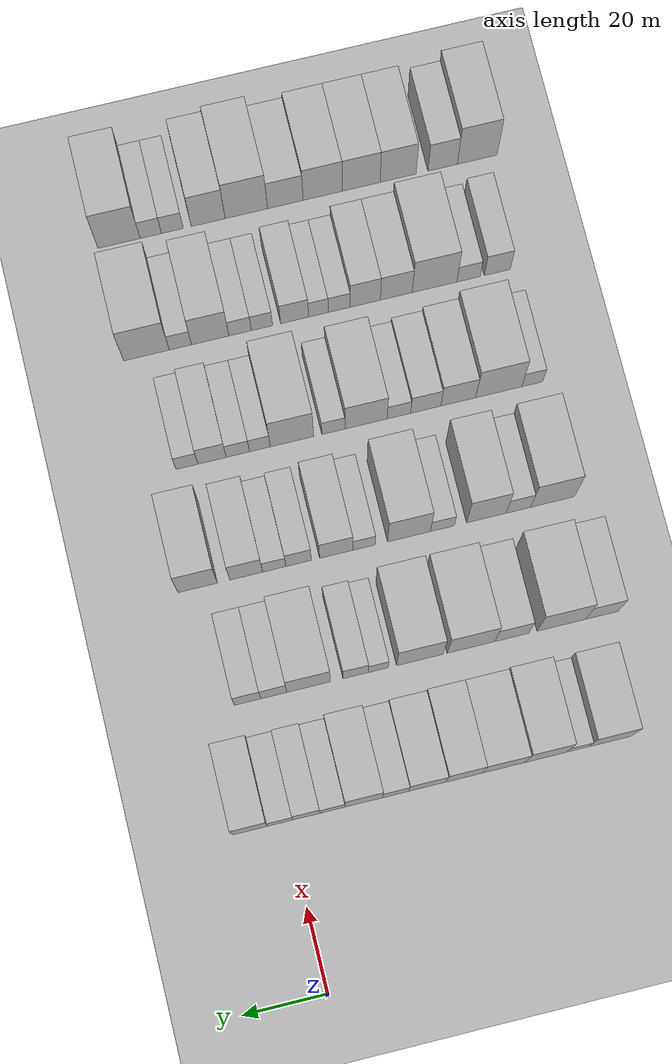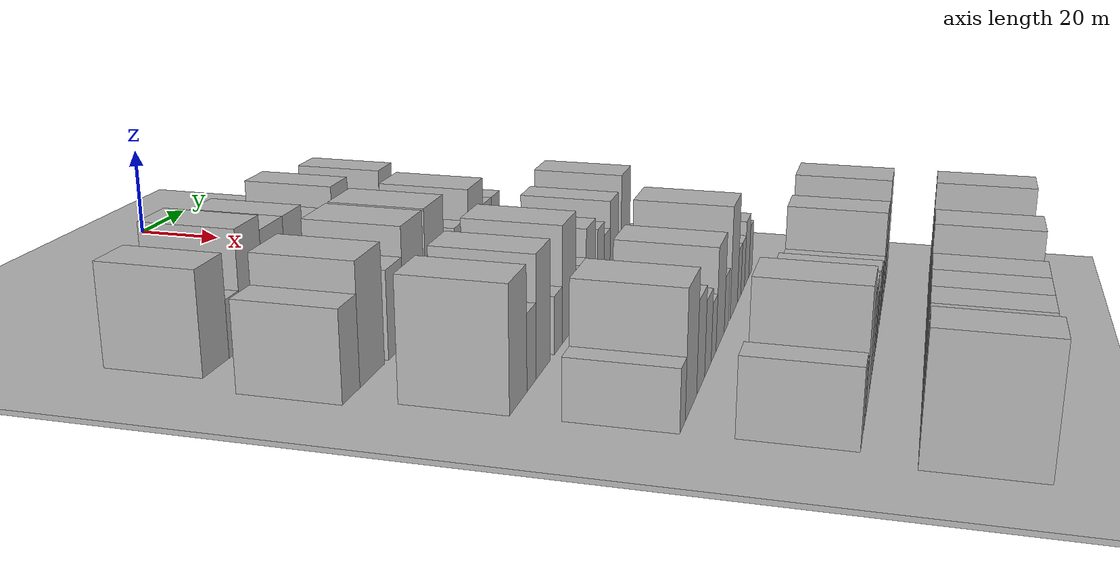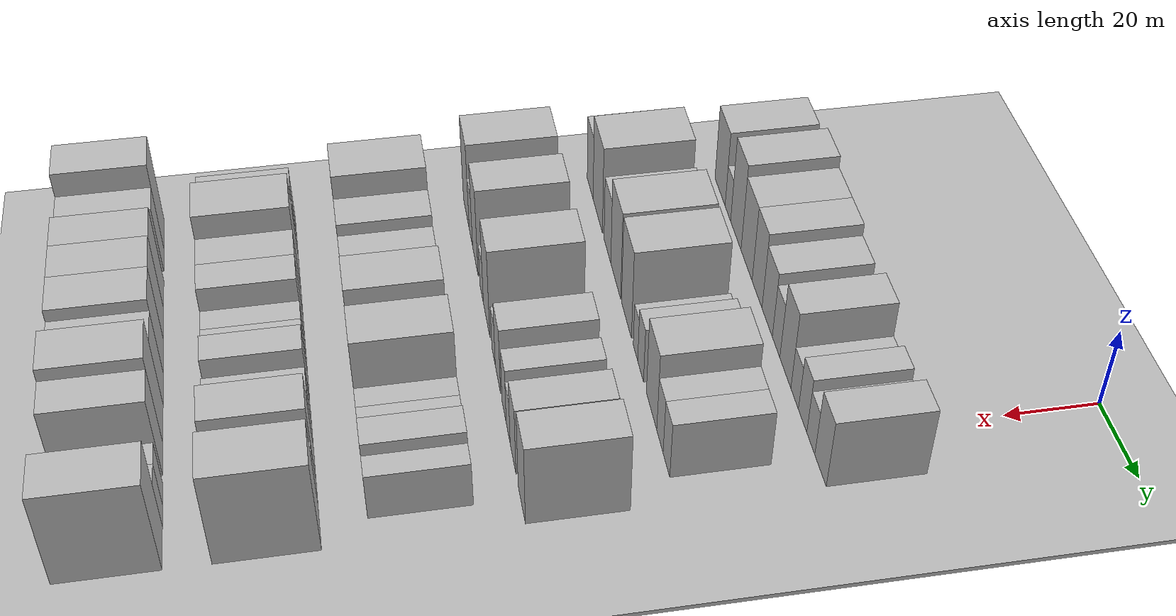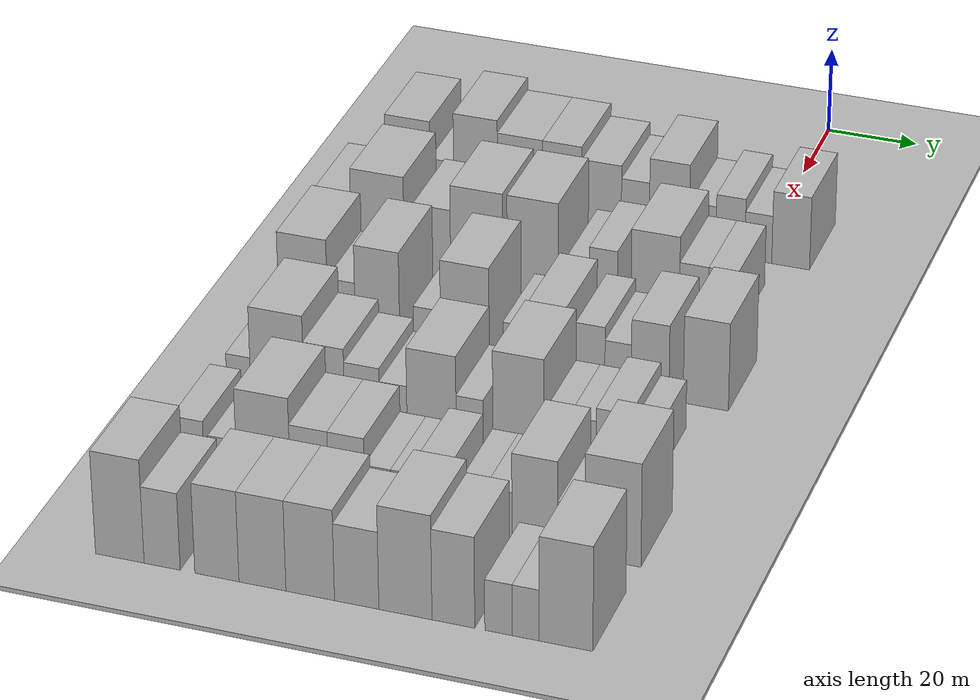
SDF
<sdf version="1.6">
 <world name="default">
  <include><name>ground_plane_1</name><uri>model://HANNAS_ground_plane</uri></include>
  <include>
   <name>ground_plane_2</name>
   <uri>model://HANNAS_ground_plane</uri>
   <pose>100 0 0  0 0 0</pose>
  </include>
  <model name="building_48">
   <static>1</static>
   <pose>50.0000 -77.1496 0 0.000000 0.000000 0.000000</pose>
   <link name="link">
    <pose>0 0 10.50 0 0 0</pose>
    <collision name="collision"><geometry><box><size>20.0000 10.1915 21.0000</size></box></geometry></collision>
    <visual name="visual">
     <cast_shadows>0</cast_shadows>
     <geometry><box><size>20.0000 10.1915 21.0000</size></box></geometry>
     <material>
      <script>
       <uri>model://HANNAS_wall/materials/scripts</uri>
       <uri>model://HANNAS_wall/materials/textures</uri>
       <name>vrc/HANNAS_wall</name>
      </script>
     </material>
    </visual>
   </link>
  </model>
  <model name="building_49">
   <static>1</static>
   <pose>50.0000 -69.3749 0 0.000000 0.000000 0.000000</pose>
   <link name="link">
    <pose>0 0 6.00 0 0 0</pose>
    <collision name="collision"><geometry><box><size>20.0000 5.3580 12.0000</size></box></geometry></collision>
    <visual name="visual">
     <cast_shadows>0</cast_shadows>
     <geometry><box><size>20.0000 5.3580 12.0000</size></box></geometry>
     <material>
      <script>
       <uri>model://HANNAS_wall/materials/scripts</uri>
       <uri>model://HANNAS_wall/materials/textures</uri>
       <name>vrc/HANNAS_wall</name>
      </script>
     </material>
    </visual>
   </link>
  </model>
  <model name="building_50">
   <static>1</static>
   <pose>50.0000 -61.7293 0 0.000000 0.000000 0.000000</pose>
   <link name="link">
    <pose>0 0 12.00 0 0 0</pose>
    <collision name="collision"><geometry><box><size>20.0000 9.9330 24.0000</size></box></geometry></collision>
    <visual name="visual">
     <cast_shadows>0</cast_shadows>
     <geometry><box><size>20.0000 9.9330 24.0000</size></box></geometry>
     <material>
      <script>
       <uri>model://HANNAS_wall/materials/scripts</uri>
       <uri>model://HANNAS_wall/materials/textures</uri>
       <name>vrc/HANNAS_wall</name>
      </script>
     </material>
    </visual>
   </link>
  </model>
  <model name="building_51">
   <static>1</static>
   <pose>50.0000 -51.6775 0 0.000000 0.000000 0.000000</pose>
   <link name="link">
    <pose>0 0 10.50 0 0 0</pose>
    <collision name="collision"><geometry><box><size>20.0000 10.1707 21.0000</size></box></geometry></collision>
    <visual name="visual">
     <cast_shadows>0</cast_shadows>
     <geometry><box><size>20.0000 10.1707 21.0000</size></box></geometry>
     <material>
      <script>
       <uri>model://HANNAS_wall/materials/scripts</uri>
       <uri>model://HANNAS_wall/materials/textures</uri>
       <name>vrc/HANNAS_wall</name>
      </script>
     </material>
    </visual>
   </link>
  </model>
  <model name="building_52">
   <static>1</static>
   <pose>50.0000 -42.2199 0 0.000000 0.000000 0.000000</pose>
   <link name="link">
    <pose>0 0 10.50 0 0 0</pose>
    <collision name="collision"><geometry><box><size>20.0000 8.7445 21.0000</size></box></geometry></collision>
    <visual name="visual">
     <cast_shadows>0</cast_shadows>
     <geometry><box><size>20.0000 8.7445 21.0000</size></box></geometry>
     <material>
      <script>
       <uri>model://HANNAS_wall/materials/scripts</uri>
       <uri>model://HANNAS_wall/materials/textures</uri>
       <name>vrc/HANNAS_wall</name>
      </script>
     </material>
    </visual>
   </link>
  </model>
  <model name="building_53">
   <static>1</static>
   <pose>50.0000 -33.4236 0 0.000000 0.000000 0.000000</pose>
   <link name="link">
    <pose>0 0 9.00 0 0 0</pose>
    <collision name="collision"><geometry><box><size>20.0000 8.8480 18.0000</size></box></geometry></collision>
    <visual name="visual">
     <cast_shadows>0</cast_shadows>
     <geometry><box><size>20.0000 8.8480 18.0000</size></box></geometry>
     <material>
      <script>
       <uri>model://HANNAS_wall/materials/scripts</uri>
       <uri>model://HANNAS_wall/materials/textures</uri>
       <name>vrc/HANNAS_wall</name>
      </script>
     </material>
    </visual>
   </link>
  </model>
  <model name="building_54">
   <static>1</static>
   <pose>50.0000 -25.8845 0 0.000000 0.000000 0.000000</pose>
   <link name="link">
    <pose>0 0 7.50 0 0 0</pose>
    <collision name="collision"><geometry><box><size>20.0000 6.2303 15.0000</size></box></geometry></collision>
    <visual name="visual">
     <cast_shadows>0</cast_shadows>
     <geometry><box><size>20.0000 6.2303 15.0000</size></box></geometry>
     <material>
      <script>
       <uri>model://HANNAS_wall/materials/scripts</uri>
       <uri>model://HANNAS_wall/materials/textures</uri>
       <name>vrc/HANNAS_wall</name>
      </script>
     </material>
    </visual>
   </link>
  </model>
  <model name="building_55">
   <static>1</static>
   <pose>50.0000 -18.3283 0 0.000000 0.000000 0.000000</pose>
   <link name="link">
    <pose>0 0 10.50 0 0 0</pose>
    <collision name="collision"><geometry><box><size>20.0000 8.8821 21.0000</size></box></geometry></collision>
    <visual name="visual">
     <cast_shadows>0</cast_shadows>
     <geometry><box><size>20.0000 8.8821 21.0000</size></box></geometry>
     <material>
      <script>
       <uri>model://HANNAS_wall/materials/scripts</uri>
       <uri>model://HANNAS_wall/materials/textures</uri>
       <name>vrc/HANNAS_wall</name>
      </script>
     </material>
    </visual>
   </link>
  </model>
  <model name="building_56">
   <static>1</static>
   <pose>50.0000 -10.9449 0 0.000000 0.000000 0.000000</pose>
   <link name="link">
    <pose>0 0 6.00 0 0 0</pose>
    <collision name="collision"><geometry><box><size>20.0000 5.8846 12.0000</size></box></geometry></collision>
    <visual name="visual">
     <cast_shadows>0</cast_shadows>
     <geometry><box><size>20.0000 5.8846 12.0000</size></box></geometry>
     <material>
      <script>
       <uri>model://HANNAS_wall/materials/scripts</uri>
       <uri>model://HANNAS_wall/materials/textures</uri>
       <name>vrc/HANNAS_wall</name>
      </script>
     </material>
    </visual>
   </link>
  </model>
  <model name="building_57">
   <static>1</static>
   <pose>50.0000 -4.8059 0 0.000000 0.000000 0.000000</pose>
   <link name="link">
    <pose>0 0 7.50 0 0 0</pose>
    <collision name="collision"><geometry><box><size>20.0000 6.3935 15.0000</size></box></geometry></collision>
    <visual name="visual">
     <cast_shadows>0</cast_shadows>
     <geometry><box><size>20.0000 6.3935 15.0000</size></box></geometry>
     <material>
      <script>
       <uri>model://HANNAS_wall/materials/scripts</uri>
       <uri>model://HANNAS_wall/materials/textures</uri>
       <name>vrc/HANNAS_wall</name>
      </script>
     </material>
    </visual>
   </link>
  </model>
  <model name="building_58">
   <static>1</static>
   <pose>50.0000 1.3599 0 0.000000 0.000000 0.000000</pose>
   <link name="link">
    <pose>0 0 6.00 0 0 0</pose>
    <collision name="collision"><geometry><box><size>20.0000 5.9380 12.0000</size></box></geometry></collision>
    <visual name="visual">
     <cast_shadows>0</cast_shadows>
     <geometry><box><size>20.0000 5.9380 12.0000</size></box></geometry>
     <material>
      <script>
       <uri>model://HANNAS_wall/materials/scripts</uri>
       <uri>model://HANNAS_wall/materials/textures</uri>
       <name>vrc/HANNAS_wall</name>
      </script>
     </material>
    </visual>
   </link>
  </model>
  <model name="building_59">
   <static>1</static>
   <pose>50.0000 8.4683 0 0.000000 0.000000 0.000000</pose>
   <link name="link">
    <pose>0 0 9.00 0 0 0</pose>
    <collision name="collision"><geometry><box><size>20.0000 8.2787 18.0000</size></box></geometry></collision>
    <visual name="visual">
     <cast_shadows>0</cast_shadows>
     <geometry><box><size>20.0000 8.2787 18.0000</size></box></geometry>
     <material>
      <script>
       <uri>model://HANNAS_wall/materials/scripts</uri>
       <uri>model://HANNAS_wall/materials/textures</uri>
       <name>vrc/HANNAS_wall</name>
      </script>
     </material>
    </visual>
   </link>
  </model>
  <model name="building_160">
   <static>1</static>
   <pose>79.0000 -83.1535 0 0.000000 0.000000 0.000000</pose>
   <link name="link">
    <pose>0 0 9.00 0 0 0</pose>
    <collision name="collision"><geometry><box><size>20.0000 7.9123 18.0000</size></box></geometry></collision>
    <visual name="visual">
     <cast_shadows>0</cast_shadows>
     <geometry><box><size>20.0000 7.9123 18.0000</size></box></geometry>
     <material>
      <script>
       <uri>model://HANNAS_wall/materials/scripts</uri>
       <uri>model://HANNAS_wall/materials/textures</uri>
       <name>vrc/HANNAS_wall</name>
      </script>
     </material>
    </visual>
   </link>
  </model>
  <model name="building_161">
   <static>1</static>
   <pose>79.0000 -73.2806 0 0.000000 0.000000 0.000000</pose>
   <link name="link">
    <pose>0 0 12.00 0 0 0</pose>
    <collision name="collision"><geometry><box><size>20.0000 11.8336 24.0000</size></box></geometry></collision>
    <visual name="visual">
     <cast_shadows>0</cast_shadows>
     <geometry><box><size>20.0000 11.8336 24.0000</size></box></geometry>
     <material>
      <script>
       <uri>model://HANNAS_wall/materials/scripts</uri>
       <uri>model://HANNAS_wall/materials/textures</uri>
       <name>vrc/HANNAS_wall</name>
      </script>
     </material>
    </visual>
   </link>
  </model>
  <model name="building_162">
   <static>1</static>
   <pose>79.0000 -61.2248 0 0.000000 0.000000 0.000000</pose>
   <link name="link">
    <pose>0 0 9.00 0 0 0</pose>
    <collision name="collision"><geometry><box><size>20.0000 8.2779 18.0000</size></box></geometry></collision>
    <visual name="visual">
     <cast_shadows>0</cast_shadows>
     <geometry><box><size>20.0000 8.2779 18.0000</size></box></geometry>
     <material>
      <script>
       <uri>model://HANNAS_wall/materials/scripts</uri>
       <uri>model://HANNAS_wall/materials/textures</uri>
       <name>vrc/HANNAS_wall</name>
      </script>
     </material>
    </visual>
   </link>
  </model>
  <model name="building_163">
   <static>1</static>
   <pose>79.0000 -51.3364 0 0.000000 0.000000 0.000000</pose>
   <link name="link">
    <pose>0 0 12.00 0 0 0</pose>
    <collision name="collision"><geometry><box><size>20.0000 11.4990 24.0000</size></box></geometry></collision>
    <visual name="visual">
     <cast_shadows>0</cast_shadows>
     <geometry><box><size>20.0000 11.4990 24.0000</size></box></geometry>
     <material>
      <script>
       <uri>model://HANNAS_wall/materials/scripts</uri>
       <uri>model://HANNAS_wall/materials/textures</uri>
       <name>vrc/HANNAS_wall</name>
      </script>
     </material>
    </visual>
   </link>
  </model>
  <model name="building_164">
   <static>1</static>
   <pose>79.0000 -38.9985 0 0.000000 0.000000 0.000000</pose>
   <link name="link">
    <pose>0 0 12.00 0 0 0</pose>
    <collision name="collision"><geometry><box><size>20.0000 11.1768 24.0000</size></box></geometry></collision>
    <visual name="visual">
     <cast_shadows>0</cast_shadows>
     <geometry><box><size>20.0000 11.1768 24.0000</size></box></geometry>
     <material>
      <script>
       <uri>model://HANNAS_wall/materials/scripts</uri>
       <uri>model://HANNAS_wall/materials/textures</uri>
       <name>vrc/HANNAS_wall</name>
      </script>
     </material>
    </visual>
   </link>
  </model>
  <model name="building_165">
   <static>1</static>
   <pose>79.0000 -29.0011 0 0.000000 0.000000 0.000000</pose>
   <link name="link">
    <pose>0 0 6.00 0 0 0</pose>
    <collision name="collision"><geometry><box><size>20.0000 4.8180 12.0000</size></box></geometry></collision>
    <visual name="visual">
     <cast_shadows>0</cast_shadows>
     <geometry><box><size>20.0000 4.8180 12.0000</size></box></geometry>
     <material>
      <script>
       <uri>model://HANNAS_wall/materials/scripts</uri>
       <uri>model://HANNAS_wall/materials/textures</uri>
       <name>vrc/HANNAS_wall</name>
      </script>
     </material>
    </visual>
   </link>
  </model>
  <model name="building_166">
   <static>1</static>
   <pose>79.0000 -23.5528 0 0.000000 0.000000 0.000000</pose>
   <link name="link">
    <pose>0 0 7.50 0 0 0</pose>
    <collision name="collision"><geometry><box><size>20.0000 6.0787 15.0000</size></box></geometry></collision>
    <visual name="visual">
     <cast_shadows>0</cast_shadows>
     <geometry><box><size>20.0000 6.0787 15.0000</size></box></geometry>
     <material>
      <script>
       <uri>model://HANNAS_wall/materials/scripts</uri>
       <uri>model://HANNAS_wall/materials/textures</uri>
       <name>vrc/HANNAS_wall</name>
      </script>
     </material>
    </visual>
   </link>
  </model>
  <model name="building_167">
   <static>1</static>
   <pose>79.0000 -12.3014 0 0.000000 0.000000 0.000000</pose>
   <link name="link">
    <pose>0 0 10.50 0 0 0</pose>
    <collision name="collision"><geometry><box><size>20.0000 10.4240 21.0000</size></box></geometry></collision>
    <visual name="visual">
     <cast_shadows>0</cast_shadows>
     <geometry><box><size>20.0000 10.4240 21.0000</size></box></geometry>
     <material>
      <script>
       <uri>model://HANNAS_wall/materials/scripts</uri>
       <uri>model://HANNAS_wall/materials/textures</uri>
       <name>vrc/HANNAS_wall</name>
      </script>
     </material>
    </visual>
   </link>
  </model>
  <model name="building_168">
   <static>1</static>
   <pose>79.0000 -3.9907 0 0.000000 0.000000 0.000000</pose>
   <link name="link">
    <pose>0 0 7.50 0 0 0</pose>
    <collision name="collision"><geometry><box><size>20.0000 6.1975 15.0000</size></box></geometry></collision>
    <visual name="visual">
     <cast_shadows>0</cast_shadows>
     <geometry><box><size>20.0000 6.1975 15.0000</size></box></geometry>
     <material>
      <script>
       <uri>model://HANNAS_wall/materials/scripts</uri>
       <uri>model://HANNAS_wall/materials/textures</uri>
       <name>vrc/HANNAS_wall</name>
      </script>
     </material>
    </visual>
   </link>
  </model>
  <model name="building_169">
   <static>1</static>
   <pose>79.0000 2.2662 0 0.000000 0.000000 0.000000</pose>
   <link name="link">
    <pose>0 0 7.50 0 0 0</pose>
    <collision name="collision"><geometry><box><size>20.0000 6.3163 15.0000</size></box></geometry></collision>
    <visual name="visual">
     <cast_shadows>0</cast_shadows>
     <geometry><box><size>20.0000 6.3163 15.0000</size></box></geometry>
     <material>
      <script>
       <uri>model://HANNAS_wall/materials/scripts</uri>
       <uri>model://HANNAS_wall/materials/textures</uri>
       <name>vrc/HANNAS_wall</name>
      </script>
     </material>
    </visual>
   </link>
  </model>
  <model name="building_279">
   <static>1</static>
   <pose>108.0000 -78.8030 0 0.000000 0.000000 0.000000</pose>
   <link name="link">
    <pose>0 0 12.00 0 0 0</pose>
    <collision name="collision"><geometry><box><size>20.0000 10.7296 24.0000</size></box></geometry></collision>
    <visual name="visual">
     <cast_shadows>0</cast_shadows>
     <geometry><box><size>20.0000 10.7296 24.0000</size></box></geometry>
     <material>
      <script>
       <uri>model://HANNAS_wall/materials/scripts</uri>
       <uri>model://HANNAS_wall/materials/textures</uri>
       <name>vrc/HANNAS_wall</name>
      </script>
     </material>
    </visual>
   </link>
  </model>
  <model name="building_280">
   <static>1</static>
   <pose>108.0000 -70.4256 0 0.000000 0.000000 0.000000</pose>
   <link name="link">
    <pose>0 0 7.50 0 0 0</pose>
    <collision name="collision"><geometry><box><size>20.0000 6.0253 15.0000</size></box></geometry></collision>
    <visual name="visual">
     <cast_shadows>0</cast_shadows>
     <geometry><box><size>20.0000 6.0253 15.0000</size></box></geometry>
     <material>
      <script>
       <uri>model://HANNAS_wall/materials/scripts</uri>
       <uri>model://HANNAS_wall/materials/textures</uri>
       <name>vrc/HANNAS_wall</name>
      </script>
     </material>
    </visual>
   </link>
  </model>
  <model name="building_281">
   <static>1</static>
   <pose>108.0000 -62.5819 0 0.000000 0.000000 0.000000</pose>
   <link name="link">
    <pose>0 0 12.00 0 0 0</pose>
    <collision name="collision"><geometry><box><size>20.0000 9.6620 24.0000</size></box></geometry></collision>
    <visual name="visual">
     <cast_shadows>0</cast_shadows>
     <geometry><box><size>20.0000 9.6620 24.0000</size></box></geometry>
     <material>
      <script>
       <uri>model://HANNAS_wall/materials/scripts</uri>
       <uri>model://HANNAS_wall/materials/textures</uri>
       <name>vrc/HANNAS_wall</name>
      </script>
     </material>
    </visual>
   </link>
  </model>
  <model name="building_282">
   <static>1</static>
   <pose>108.0000 -51.8193 0 0.000000 0.000000 0.000000</pose>
   <link name="link">
    <pose>0 0 6.00 0 0 0</pose>
    <collision name="collision"><geometry><box><size>20.0000 5.8633 12.0000</size></box></geometry></collision>
    <visual name="visual">
     <cast_shadows>0</cast_shadows>
     <geometry><box><size>20.0000 5.8633 12.0000</size></box></geometry>
     <material>
      <script>
       <uri>model://HANNAS_wall/materials/scripts</uri>
       <uri>model://HANNAS_wall/materials/textures</uri>
       <name>vrc/HANNAS_wall</name>
      </script>
     </material>
    </visual>
   </link>
  </model>
  <model name="building_283">
   <static>1</static>
   <pose>108.0000 -43.6812 0 0.000000 0.000000 0.000000</pose>
   <link name="link">
    <pose>0 0 12.00 0 0 0</pose>
    <collision name="collision"><geometry><box><size>20.0000 10.4129 24.0000</size></box></geometry></collision>
    <visual name="visual">
     <cast_shadows>0</cast_shadows>
     <geometry><box><size>20.0000 10.4129 24.0000</size></box></geometry>
     <material>
      <script>
       <uri>model://HANNAS_wall/materials/scripts</uri>
       <uri>model://HANNAS_wall/materials/textures</uri>
       <name>vrc/HANNAS_wall</name>
      </script>
     </material>
    </visual>
   </link>
  </model>
  <model name="building_284">
   <static>1</static>
   <pose>108.0000 -32.7437 0 0.000000 0.000000 0.000000</pose>
   <link name="link">
    <pose>0 0 6.00 0 0 0</pose>
    <collision name="collision"><geometry><box><size>20.0000 5.4621 12.0000</size></box></geometry></collision>
    <visual name="visual">
     <cast_shadows>0</cast_shadows>
     <geometry><box><size>20.0000 5.4621 12.0000</size></box></geometry>
     <material>
      <script>
       <uri>model://HANNAS_wall/materials/scripts</uri>
       <uri>model://HANNAS_wall/materials/textures</uri>
       <name>vrc/HANNAS_wall</name>
      </script>
     </material>
    </visual>
   </link>
  </model>
  <model name="building_285">
   <static>1</static>
   <pose>108.0000 -25.9898 0 0.000000 0.000000 0.000000</pose>
   <link name="link">
    <pose>0 0 9.00 0 0 0</pose>
    <collision name="collision"><geometry><box><size>20.0000 8.0456 18.0000</size></box></geometry></collision>
    <visual name="visual">
     <cast_shadows>0</cast_shadows>
     <geometry><box><size>20.0000 8.0456 18.0000</size></box></geometry>
     <material>
      <script>
       <uri>model://HANNAS_wall/materials/scripts</uri>
       <uri>model://HANNAS_wall/materials/textures</uri>
       <name>vrc/HANNAS_wall</name>
      </script>
     </material>
    </visual>
   </link>
  </model>
  <model name="building_286">
   <static>1</static>
   <pose>108.0000 -16.8710 0 0.000000 0.000000 0.000000</pose>
   <link name="link">
    <pose>0 0 7.50 0 0 0</pose>
    <collision name="collision"><geometry><box><size>20.0000 6.1920 15.0000</size></box></geometry></collision>
    <visual name="visual">
     <cast_shadows>0</cast_shadows>
     <geometry><box><size>20.0000 6.1920 15.0000</size></box></geometry>
     <material>
      <script>
       <uri>model://HANNAS_wall/materials/scripts</uri>
       <uri>model://HANNAS_wall/materials/textures</uri>
       <name>vrc/HANNAS_wall</name>
      </script>
     </material>
    </visual>
   </link>
  </model>
  <model name="building_287">
   <static>1</static>
   <pose>108.0000 -10.9769 0 0.000000 0.000000 0.000000</pose>
   <link name="link">
    <pose>0 0 6.00 0 0 0</pose>
    <collision name="collision"><geometry><box><size>20.0000 5.5963 12.0000</size></box></geometry></collision>
    <visual name="visual">
     <cast_shadows>0</cast_shadows>
     <geometry><box><size>20.0000 5.5963 12.0000</size></box></geometry>
     <material>
      <script>
       <uri>model://HANNAS_wall/materials/scripts</uri>
       <uri>model://HANNAS_wall/materials/textures</uri>
       <name>vrc/HANNAS_wall</name>
      </script>
     </material>
    </visual>
   </link>
  </model>
  <model name="building_288">
   <static>1</static>
   <pose>108.0000 -4.1993 0 0.000000 0.000000 0.000000</pose>
   <link name="link">
    <pose>0 0 9.00 0 0 0</pose>
    <collision name="collision"><geometry><box><size>20.0000 7.9589 18.0000</size></box></geometry></collision>
    <visual name="visual">
     <cast_shadows>0</cast_shadows>
     <geometry><box><size>20.0000 7.9589 18.0000</size></box></geometry>
     <material>
      <script>
       <uri>model://HANNAS_wall/materials/scripts</uri>
       <uri>model://HANNAS_wall/materials/textures</uri>
       <name>vrc/HANNAS_wall</name>
      </script>
     </material>
    </visual>
   </link>
  </model>
  <model name="building_289">
   <static>1</static>
   <pose>108.0000 7.5299 0 0.000000 0.000000 0.000000</pose>
   <link name="link">
    <pose>0 0 10.50 0 0 0</pose>
    <collision name="collision"><geometry><box><size>20.0000 9.4995 21.0000</size></box></geometry></collision>
    <visual name="visual">
     <cast_shadows>0</cast_shadows>
     <geometry><box><size>20.0000 9.4995 21.0000</size></box></geometry>
     <material>
      <script>
       <uri>model://HANNAS_wall/materials/scripts</uri>
       <uri>model://HANNAS_wall/materials/textures</uri>
       <name>vrc/HANNAS_wall</name>
      </script>
     </material>
    </visual>
   </link>
  </model>
  <model name="building_392">
   <static>1</static>
   <pose>137.0000 -81.4250 0 0.000000 0.000000 0.000000</pose>
   <link name="link">
    <pose>0 0 6.00 0 0 0</pose>
    <collision name="collision"><geometry><box><size>20.0000 5.1839 12.0000</size></box></geometry></collision>
    <visual name="visual">
     <cast_shadows>0</cast_shadows>
     <geometry><box><size>20.0000 5.1839 12.0000</size></box></geometry>
     <material>
      <script>
       <uri>model://HANNAS_wall/materials/scripts</uri>
       <uri>model://HANNAS_wall/materials/textures</uri>
       <name>vrc/HANNAS_wall</name>
      </script>
     </material>
    </visual>
   </link>
  </model>
  <model name="building_393">
   <static>1</static>
   <pose>137.0000 -73.1207 0 0.000000 0.000000 0.000000</pose>
   <link name="link">
    <pose>0 0 12.00 0 0 0</pose>
    <collision name="collision"><geometry><box><size>20.0000 11.4245 24.0000</size></box></geometry></collision>
    <visual name="visual">
     <cast_shadows>0</cast_shadows>
     <geometry><box><size>20.0000 11.4245 24.0000</size></box></geometry>
     <material>
      <script>
       <uri>model://HANNAS_wall/materials/scripts</uri>
       <uri>model://HANNAS_wall/materials/textures</uri>
       <name>vrc/HANNAS_wall</name>
      </script>
     </material>
    </visual>
   </link>
  </model>
  <model name="building_394">
   <static>1</static>
   <pose>137.0000 -63.1039 0 0.000000 0.000000 0.000000</pose>
   <link name="link">
    <pose>0 0 9.00 0 0 0</pose>
    <collision name="collision"><geometry><box><size>20.0000 8.6091 18.0000</size></box></geometry></collision>
    <visual name="visual">
     <cast_shadows>0</cast_shadows>
     <geometry><box><size>20.0000 8.6091 18.0000</size></box></geometry>
     <material>
      <script>
       <uri>model://HANNAS_wall/materials/scripts</uri>
       <uri>model://HANNAS_wall/materials/textures</uri>
       <name>vrc/HANNAS_wall</name>
      </script>
     </material>
    </visual>
   </link>
  </model>
  <model name="building_395">
   <static>1</static>
   <pose>137.0000 -55.0749 0 0.000000 0.000000 0.000000</pose>
   <link name="link">
    <pose>0 0 7.50 0 0 0</pose>
    <collision name="collision"><geometry><box><size>20.0000 7.4489 15.0000</size></box></geometry></collision>
    <visual name="visual">
     <cast_shadows>0</cast_shadows>
     <geometry><box><size>20.0000 7.4489 15.0000</size></box></geometry>
     <material>
      <script>
       <uri>model://HANNAS_wall/materials/scripts</uri>
       <uri>model://HANNAS_wall/materials/textures</uri>
       <name>vrc/HANNAS_wall</name>
      </script>
     </material>
    </visual>
   </link>
  </model>
  <model name="building_396">
   <static>1</static>
   <pose>137.0000 -48.4615 0 0.000000 0.000000 0.000000</pose>
   <link name="link">
    <pose>0 0 6.00 0 0 0</pose>
    <collision name="collision"><geometry><box><size>20.0000 5.7779 12.0000</size></box></geometry></collision>
    <visual name="visual">
     <cast_shadows>0</cast_shadows>
     <geometry><box><size>20.0000 5.7779 12.0000</size></box></geometry>
     <material>
      <script>
       <uri>model://HANNAS_wall/materials/scripts</uri>
       <uri>model://HANNAS_wall/materials/textures</uri>
       <name>vrc/HANNAS_wall</name>
      </script>
     </material>
    </visual>
   </link>
  </model>
  <model name="building_397">
   <static>1</static>
   <pose>137.0000 -40.3963 0 0.000000 0.000000 0.000000</pose>
   <link name="link">
    <pose>0 0 10.50 0 0 0</pose>
    <collision name="collision"><geometry><box><size>20.0000 10.3524 21.0000</size></box></geometry></collision>
    <visual name="visual">
     <cast_shadows>0</cast_shadows>
     <geometry><box><size>20.0000 10.3524 21.0000</size></box></geometry>
     <material>
      <script>
       <uri>model://HANNAS_wall/materials/scripts</uri>
       <uri>model://HANNAS_wall/materials/textures</uri>
       <name>vrc/HANNAS_wall</name>
      </script>
     </material>
    </visual>
   </link>
  </model>
  <model name="building_398">
   <static>1</static>
   <pose>137.0000 -32.3867 0 0.000000 0.000000 0.000000</pose>
   <link name="link">
    <pose>0 0 6.00 0 0 0</pose>
    <collision name="collision"><geometry><box><size>20.0000 5.6668 12.0000</size></box></geometry></collision>
    <visual name="visual">
     <cast_shadows>0</cast_shadows>
     <geometry><box><size>20.0000 5.6668 12.0000</size></box></geometry>
     <material>
      <script>
       <uri>model://HANNAS_wall/materials/scripts</uri>
       <uri>model://HANNAS_wall/materials/textures</uri>
       <name>vrc/HANNAS_wall</name>
      </script>
     </material>
    </visual>
   </link>
  </model>
  <model name="building_399">
   <static>1</static>
   <pose>137.0000 -22.2273 0 0.000000 0.000000 0.000000</pose>
   <link name="link">
    <pose>0 0 12.00 0 0 0</pose>
    <collision name="collision"><geometry><box><size>20.0000 10.6520 24.0000</size></box></geometry></collision>
    <visual name="visual">
     <cast_shadows>0</cast_shadows>
     <geometry><box><size>20.0000 10.6520 24.0000</size></box></geometry>
     <material>
      <script>
       <uri>model://HANNAS_wall/materials/scripts</uri>
       <uri>model://HANNAS_wall/materials/textures</uri>
       <name>vrc/HANNAS_wall</name>
      </script>
     </material>
    </visual>
   </link>
  </model>
  <model name="building_400">
   <static>1</static>
   <pose>137.0000 -14.3689 0 0.000000 0.000000 0.000000</pose>
   <link name="link">
    <pose>0 0 6.00 0 0 0</pose>
    <collision name="collision"><geometry><box><size>20.0000 5.0649 12.0000</size></box></geometry></collision>
    <visual name="visual">
     <cast_shadows>0</cast_shadows>
     <geometry><box><size>20.0000 5.0649 12.0000</size></box></geometry>
     <material>
      <script>
       <uri>model://HANNAS_wall/materials/scripts</uri>
       <uri>model://HANNAS_wall/materials/textures</uri>
       <name>vrc/HANNAS_wall</name>
      </script>
     </material>
    </visual>
   </link>
  </model>
  <model name="building_401">
   <static>1</static>
   <pose>137.0000 -8.9883 0 0.000000 0.000000 0.000000</pose>
   <link name="link">
    <pose>0 0 6.00 0 0 0</pose>
    <collision name="collision"><geometry><box><size>20.0000 5.6963 12.0000</size></box></geometry></collision>
    <visual name="visual">
     <cast_shadows>0</cast_shadows>
     <geometry><box><size>20.0000 5.6963 12.0000</size></box></geometry>
     <material>
      <script>
       <uri>model://HANNAS_wall/materials/scripts</uri>
       <uri>model://HANNAS_wall/materials/textures</uri>
       <name>vrc/HANNAS_wall</name>
      </script>
     </material>
    </visual>
   </link>
  </model>
  <model name="building_402">
   <static>1</static>
   <pose>137.0000 -2.6716 0 0.000000 0.000000 0.000000</pose>
   <link name="link">
    <pose>0 0 7.50 0 0 0</pose>
    <collision name="collision"><geometry><box><size>20.0000 6.9371 15.0000</size></box></geometry></collision>
    <visual name="visual">
     <cast_shadows>0</cast_shadows>
     <geometry><box><size>20.0000 6.9371 15.0000</size></box></geometry>
     <material>
      <script>
       <uri>model://HANNAS_wall/materials/scripts</uri>
       <uri>model://HANNAS_wall/materials/textures</uri>
       <name>vrc/HANNAS_wall</name>
      </script>
     </material>
    </visual>
   </link>
  </model>
  <model name="building_403">
   <static>1</static>
   <pose>137.0000 3.4702 0 0.000000 0.000000 0.000000</pose>
   <link name="link">
    <pose>0 0 6.00 0 0 0</pose>
    <collision name="collision"><geometry><box><size>20.0000 5.3465 12.0000</size></box></geometry></collision>
    <visual name="visual">
     <cast_shadows>0</cast_shadows>
     <geometry><box><size>20.0000 5.3465 12.0000</size></box></geometry>
     <material>
      <script>
       <uri>model://HANNAS_wall/materials/scripts</uri>
       <uri>model://HANNAS_wall/materials/textures</uri>
       <name>vrc/HANNAS_wall</name>
      </script>
     </material>
    </visual>
   </link>
  </model>
  <model name="building_513">
   <static>1</static>
   <pose>166.0000 -80.2910 0 0.000000 0.000000 0.000000</pose>
   <link name="link">
    <pose>0 0 7.50 0 0 0</pose>
    <collision name="collision"><geometry><box><size>20.0000 6.4937 15.0000</size></box></geometry></collision>
    <visual name="visual">
     <cast_shadows>0</cast_shadows>
     <geometry><box><size>20.0000 6.4937 15.0000</size></box></geometry>
     <material>
      <script>
       <uri>model://HANNAS_wall/materials/scripts</uri>
       <uri>model://HANNAS_wall/materials/textures</uri>
       <name>vrc/HANNAS_wall</name>
      </script>
     </material>
    </visual>
   </link>
  </model>
  <model name="building_514">
   <static>1</static>
   <pose>166.0000 -73.1269 0 0.000000 0.000000 0.000000</pose>
   <link name="link">
    <pose>0 0 6.00 0 0 0</pose>
    <collision name="collision"><geometry><box><size>20.0000 5.8345 12.0000</size></box></geometry></collision>
    <visual name="visual">
     <cast_shadows>0</cast_shadows>
     <geometry><box><size>20.0000 5.8345 12.0000</size></box></geometry>
     <material>
      <script>
       <uri>model://HANNAS_wall/materials/scripts</uri>
       <uri>model://HANNAS_wall/materials/textures</uri>
       <name>vrc/HANNAS_wall</name>
      </script>
     </material>
    </visual>
   </link>
  </model>
  <model name="building_515">
   <static>1</static>
   <pose>166.0000 -64.6359 0 0.000000 0.000000 0.000000</pose>
   <link name="link">
    <pose>0 0 12.00 0 0 0</pose>
    <collision name="collision"><geometry><box><size>20.0000 11.1475 24.0000</size></box></geometry></collision>
    <visual name="visual">
     <cast_shadows>0</cast_shadows>
     <geometry><box><size>20.0000 11.1475 24.0000</size></box></geometry>
     <material>
      <script>
       <uri>model://HANNAS_wall/materials/scripts</uri>
       <uri>model://HANNAS_wall/materials/textures</uri>
       <name>vrc/HANNAS_wall</name>
      </script>
     </material>
    </visual>
   </link>
  </model>
  <model name="building_516">
   <static>1</static>
   <pose>166.0000 -55.1064 0 0.000000 0.000000 0.000000</pose>
   <link name="link">
    <pose>0 0 9.00 0 0 0</pose>
    <collision name="collision"><geometry><box><size>20.0000 7.9114 18.0000</size></box></geometry></collision>
    <visual name="visual">
     <cast_shadows>0</cast_shadows>
     <geometry><box><size>20.0000 7.9114 18.0000</size></box></geometry>
     <material>
      <script>
       <uri>model://HANNAS_wall/materials/scripts</uri>
       <uri>model://HANNAS_wall/materials/textures</uri>
       <name>vrc/HANNAS_wall</name>
      </script>
     </material>
    </visual>
   </link>
  </model>
  <model name="building_517">
   <static>1</static>
   <pose>166.0000 -47.3884 0 0.000000 0.000000 0.000000</pose>
   <link name="link">
    <pose>0 0 9.00 0 0 0</pose>
    <collision name="collision"><geometry><box><size>20.0000 7.5246 18.0000</size></box></geometry></collision>
    <visual name="visual">
     <cast_shadows>0</cast_shadows>
     <geometry><box><size>20.0000 7.5246 18.0000</size></box></geometry>
     <material>
      <script>
       <uri>model://HANNAS_wall/materials/scripts</uri>
       <uri>model://HANNAS_wall/materials/textures</uri>
       <name>vrc/HANNAS_wall</name>
      </script>
     </material>
    </visual>
   </link>
  </model>
  <model name="building_518">
   <static>1</static>
   <pose>166.0000 -40.9251 0 0.000000 0.000000 0.000000</pose>
   <link name="link">
    <pose>0 0 6.00 0 0 0</pose>
    <collision name="collision"><geometry><box><size>20.0000 5.4021 12.0000</size></box></geometry></collision>
    <visual name="visual">
     <cast_shadows>0</cast_shadows>
     <geometry><box><size>20.0000 5.4021 12.0000</size></box></geometry>
     <material>
      <script>
       <uri>model://HANNAS_wall/materials/scripts</uri>
       <uri>model://HANNAS_wall/materials/textures</uri>
       <name>vrc/HANNAS_wall</name>
      </script>
     </material>
    </visual>
   </link>
  </model>
  <model name="building_519">
   <static>1</static>
   <pose>166.0000 -35.7773 0 0.000000 0.000000 0.000000</pose>
   <link name="link">
    <pose>0 0 6.00 0 0 0</pose>
    <collision name="collision"><geometry><box><size>20.0000 4.8936 12.0000</size></box></geometry></collision>
    <visual name="visual">
     <cast_shadows>0</cast_shadows>
     <geometry><box><size>20.0000 4.8936 12.0000</size></box></geometry>
     <material>
      <script>
       <uri>model://HANNAS_wall/materials/scripts</uri>
       <uri>model://HANNAS_wall/materials/textures</uri>
       <name>vrc/HANNAS_wall</name>
      </script>
     </material>
    </visual>
   </link>
  </model>
  <model name="building_520">
   <static>1</static>
   <pose>166.0000 -29.8539 0 0.000000 0.000000 0.000000</pose>
   <link name="link">
    <pose>0 0 7.50 0 0 0</pose>
    <collision name="collision"><geometry><box><size>20.0000 6.9531 15.0000</size></box></geometry></collision>
    <visual name="visual">
     <cast_shadows>0</cast_shadows>
     <geometry><box><size>20.0000 6.9531 15.0000</size></box></geometry>
     <material>
      <script>
       <uri>model://HANNAS_wall/materials/scripts</uri>
       <uri>model://HANNAS_wall/materials/textures</uri>
       <name>vrc/HANNAS_wall</name>
      </script>
     </material>
    </visual>
   </link>
  </model>
  <model name="building_521">
   <static>1</static>
   <pose>166.0000 -21.7430 0 0.000000 0.000000 0.000000</pose>
   <link name="link">
    <pose>0 0 6.00 0 0 0</pose>
    <collision name="collision"><geometry><box><size>20.0000 5.2686 12.0000</size></box></geometry></collision>
    <visual name="visual">
     <cast_shadows>0</cast_shadows>
     <geometry><box><size>20.0000 5.2686 12.0000</size></box></geometry>
     <material>
      <script>
       <uri>model://HANNAS_wall/materials/scripts</uri>
       <uri>model://HANNAS_wall/materials/textures</uri>
       <name>vrc/HANNAS_wall</name>
      </script>
     </material>
    </visual>
   </link>
  </model>
  <model name="building_522">
   <static>1</static>
   <pose>166.0000 -16.3463 0 0.000000 0.000000 0.000000</pose>
   <link name="link">
    <pose>0 0 6.00 0 0 0</pose>
    <collision name="collision"><geometry><box><size>20.0000 5.5249 12.0000</size></box></geometry></collision>
    <visual name="visual">
     <cast_shadows>0</cast_shadows>
     <geometry><box><size>20.0000 5.5249 12.0000</size></box></geometry>
     <material>
      <script>
       <uri>model://HANNAS_wall/materials/scripts</uri>
       <uri>model://HANNAS_wall/materials/textures</uri>
       <name>vrc/HANNAS_wall</name>
      </script>
     </material>
    </visual>
   </link>
  </model>
  <model name="building_523">
   <static>1</static>
   <pose>166.0000 -8.9695 0 0.000000 0.000000 0.000000</pose>
   <link name="link">
    <pose>0 0 10.50 0 0 0</pose>
    <collision name="collision"><geometry><box><size>20.0000 9.2286 21.0000</size></box></geometry></collision>
    <visual name="visual">
     <cast_shadows>0</cast_shadows>
     <geometry><box><size>20.0000 9.2286 21.0000</size></box></geometry>
     <material>
      <script>
       <uri>model://HANNAS_wall/materials/scripts</uri>
       <uri>model://HANNAS_wall/materials/textures</uri>
       <name>vrc/HANNAS_wall</name>
      </script>
     </material>
    </visual>
   </link>
  </model>
  <model name="building_524">
   <static>1</static>
   <pose>166.0000 -1.6102 0 0.000000 0.000000 0.000000</pose>
   <link name="link">
    <pose>0 0 6.00 0 0 0</pose>
    <collision name="collision"><geometry><box><size>20.0000 5.4900 12.0000</size></box></geometry></collision>
    <visual name="visual">
     <cast_shadows>0</cast_shadows>
     <geometry><box><size>20.0000 5.4900 12.0000</size></box></geometry>
     <material>
      <script>
       <uri>model://HANNAS_wall/materials/scripts</uri>
       <uri>model://HANNAS_wall/materials/textures</uri>
       <name>vrc/HANNAS_wall</name>
      </script>
     </material>
    </visual>
   </link>
  </model>
  <model name="building_525">
   <static>1</static>
   <pose>166.0000 6.7562 0 0.000000 0.000000 0.000000</pose>
   <link name="link">
    <pose>0 0 12.00 0 0 0</pose>
    <collision name="collision"><geometry><box><size>20.0000 11.2428 24.0000</size></box></geometry></collision>
    <visual name="visual">
     <cast_shadows>0</cast_shadows>
     <geometry><box><size>20.0000 11.2428 24.0000</size></box></geometry>
     <material>
      <script>
       <uri>model://HANNAS_wall/materials/scripts</uri>
       <uri>model://HANNAS_wall/materials/textures</uri>
       <name>vrc/HANNAS_wall</name>
      </script>
     </material>
    </visual>
   </link>
  </model>
  <model name="building_631">
   <static>1</static>
   <pose>195.0000 -82.7754 0 0.000000 0.000000 0.000000</pose>
   <link name="link">
    <pose>0 0 12.00 0 0 0</pose>
    <collision name="collision"><geometry><box><size>20.0000 10.0469 24.0000</size></box></geometry></collision>
    <visual name="visual">
     <cast_shadows>0</cast_shadows>
     <geometry><box><size>20.0000 10.0469 24.0000</size></box></geometry>
     <material>
      <script>
       <uri>model://HANNAS_wall/materials/scripts</uri>
       <uri>model://HANNAS_wall/materials/textures</uri>
       <name>vrc/HANNAS_wall</name>
      </script>
     </material>
    </visual>
   </link>
  </model>
  <model name="building_632">
   <static>1</static>
   <pose>195.0000 -74.0397 0 0.000000 0.000000 0.000000</pose>
   <link name="link">
    <pose>0 0 9.00 0 0 0</pose>
    <collision name="collision"><geometry><box><size>20.0000 7.4244 18.0000</size></box></geometry></collision>
    <visual name="visual">
     <cast_shadows>0</cast_shadows>
     <geometry><box><size>20.0000 7.4244 18.0000</size></box></geometry>
     <material>
      <script>
       <uri>model://HANNAS_wall/materials/scripts</uri>
       <uri>model://HANNAS_wall/materials/textures</uri>
       <name>vrc/HANNAS_wall</name>
      </script>
     </material>
    </visual>
   </link>
  </model>
  <model name="building_633">
   <static>1</static>
   <pose>195.0000 -62.8158 0 0.000000 0.000000 0.000000</pose>
   <link name="link">
    <pose>0 0 10.50 0 0 0</pose>
    <collision name="collision"><geometry><box><size>20.0000 9.0235 21.0000</size></box></geometry></collision>
    <visual name="visual">
     <cast_shadows>0</cast_shadows>
     <geometry><box><size>20.0000 9.0235 21.0000</size></box></geometry>
     <material>
      <script>
       <uri>model://HANNAS_wall/materials/scripts</uri>
       <uri>model://HANNAS_wall/materials/textures</uri>
       <name>vrc/HANNAS_wall</name>
      </script>
     </material>
    </visual>
   </link>
  </model>
  <model name="building_634">
   <static>1</static>
   <pose>195.0000 -53.5325 0 0.000000 0.000000 0.000000</pose>
   <link name="link">
    <pose>0 0 10.50 0 0 0</pose>
    <collision name="collision"><geometry><box><size>20.0000 9.5430 21.0000</size></box></geometry></collision>
    <visual name="visual">
     <cast_shadows>0</cast_shadows>
     <geometry><box><size>20.0000 9.5430 21.0000</size></box></geometry>
     <material>
      <script>
       <uri>model://HANNAS_wall/materials/scripts</uri>
       <uri>model://HANNAS_wall/materials/textures</uri>
       <name>vrc/HANNAS_wall</name>
      </script>
     </material>
    </visual>
   </link>
  </model>
  <model name="building_635">
   <static>1</static>
   <pose>195.0000 -43.8526 0 0.000000 0.000000 0.000000</pose>
   <link name="link">
    <pose>0 0 10.50 0 0 0</pose>
    <collision name="collision"><geometry><box><size>20.0000 9.8168 21.0000</size></box></geometry></collision>
    <visual name="visual">
     <cast_shadows>0</cast_shadows>
     <geometry><box><size>20.0000 9.8168 21.0000</size></box></geometry>
     <material>
      <script>
       <uri>model://HANNAS_wall/materials/scripts</uri>
       <uri>model://HANNAS_wall/materials/textures</uri>
       <name>vrc/HANNAS_wall</name>
      </script>
     </material>
    </visual>
   </link>
  </model>
  <model name="building_636">
   <static>1</static>
   <pose>195.0000 -34.4914 0 0.000000 0.000000 0.000000</pose>
   <link name="link">
    <pose>0 0 9.00 0 0 0</pose>
    <collision name="collision"><geometry><box><size>20.0000 8.9057 18.0000</size></box></geometry></collision>
    <visual name="visual">
     <cast_shadows>0</cast_shadows>
     <geometry><box><size>20.0000 8.9057 18.0000</size></box></geometry>
     <material>
      <script>
       <uri>model://HANNAS_wall/materials/scripts</uri>
       <uri>model://HANNAS_wall/materials/textures</uri>
       <name>vrc/HANNAS_wall</name>
      </script>
     </material>
    </visual>
   </link>
  </model>
  <model name="building_637">
   <static>1</static>
   <pose>195.0000 -24.7383 0 0.000000 0.000000 0.000000</pose>
   <link name="link">
    <pose>0 0 12.00 0 0 0</pose>
    <collision name="collision"><geometry><box><size>20.0000 10.6005 24.0000</size></box></geometry></collision>
    <visual name="visual">
     <cast_shadows>0</cast_shadows>
     <geometry><box><size>20.0000 10.6005 24.0000</size></box></geometry>
     <material>
      <script>
       <uri>model://HANNAS_wall/materials/scripts</uri>
       <uri>model://HANNAS_wall/materials/textures</uri>
       <name>vrc/HANNAS_wall</name>
      </script>
     </material>
    </visual>
   </link>
  </model>
  <model name="building_638">
   <static>1</static>
   <pose>195.0000 -15.1974 0 0.000000 0.000000 0.000000</pose>
   <link name="link">
    <pose>0 0 10.50 0 0 0</pose>
    <collision name="collision"><geometry><box><size>20.0000 8.4812 21.0000</size></box></geometry></collision>
    <visual name="visual">
     <cast_shadows>0</cast_shadows>
     <geometry><box><size>20.0000 8.4812 21.0000</size></box></geometry>
     <material>
      <script>
       <uri>model://HANNAS_wall/materials/scripts</uri>
       <uri>model://HANNAS_wall/materials/textures</uri>
       <name>vrc/HANNAS_wall</name>
      </script>
     </material>
    </visual>
   </link>
  </model>
  <model name="building_639">
   <static>1</static>
   <pose>195.0000 -6.2538 0 0.000000 0.000000 0.000000</pose>
   <link name="link">
    <pose>0 0 6.00 0 0 0</pose>
    <collision name="collision"><geometry><box><size>20.0000 5.4061 12.0000</size></box></geometry></collision>
    <visual name="visual">
     <cast_shadows>0</cast_shadows>
     <geometry><box><size>20.0000 5.4061 12.0000</size></box></geometry>
     <material>
      <script>
       <uri>model://HANNAS_wall/materials/scripts</uri>
       <uri>model://HANNAS_wall/materials/textures</uri>
       <name>vrc/HANNAS_wall</name>
      </script>
     </material>
    </visual>
   </link>
  </model>
  <model name="building_640">
   <static>1</static>
   <pose>195.0000 -0.8849 0 0.000000 0.000000 0.000000</pose>
   <link name="link">
    <pose>0 0 6.00 0 0 0</pose>
    <collision name="collision"><geometry><box><size>20.0000 5.3316 12.0000</size></box></geometry></collision>
    <visual name="visual">
     <cast_shadows>0</cast_shadows>
     <geometry><box><size>20.0000 5.3316 12.0000</size></box></geometry>
     <material>
      <script>
       <uri>model://HANNAS_wall/materials/scripts</uri>
       <uri>model://HANNAS_wall/materials/textures</uri>
       <name>vrc/HANNAS_wall</name>
      </script>
     </material>
    </visual>
   </link>
  </model>
  <model name="building_641">
   <static>1</static>
   <pose>195.0000 7.0232 0 0.000000 0.000000 0.000000</pose>
   <link name="link">
    <pose>0 0 12.00 0 0 0</pose>
    <collision name="collision"><geometry><box><size>20.0000 10.4846 24.0000</size></box></geometry></collision>
    <visual name="visual">
     <cast_shadows>0</cast_shadows>
     <geometry><box><size>20.0000 10.4846 24.0000</size></box></geometry>
     <material>
      <script>
       <uri>model://HANNAS_wall/materials/scripts</uri>
       <uri>model://HANNAS_wall/materials/textures</uri>
       <name>vrc/HANNAS_wall</name>
      </script>
     </material>
    </visual>
   </link>
  </model>
 </world>
</sdf>
